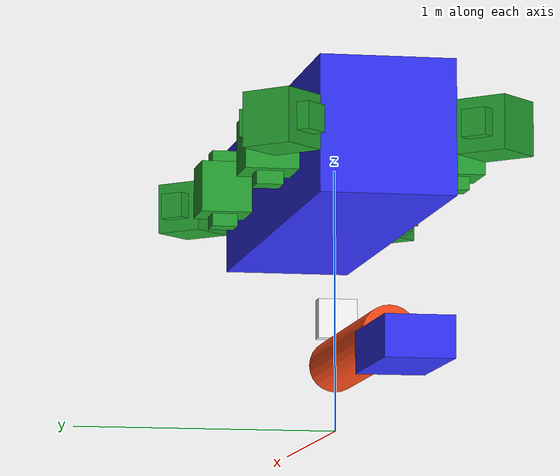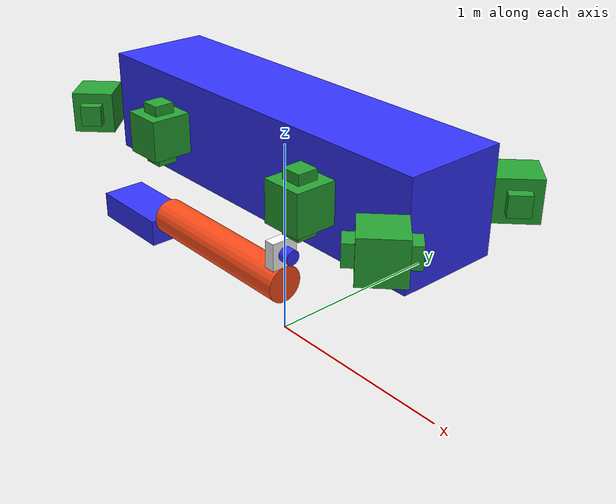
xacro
<?xml version="1.0"?>
<robot xmlns:xacro="http://www.ros.org/wiki/xacro"  name="robot">

    <!-- This is an example of a URDF. -->
    <!-- As we move through the file, new things to note will be pointed out. -->
    <!-- It's not meant an example of GOOD design, but an example of some of the various features of URDF/xacro. -->

    <!-- This will include all the contents of example_include.xacro first. Go check it out! -->
    <xacro:include filename="RoboSubInclude.xacro" />

    <!-- This first link called "world" is empty -->
    <link name="world"></link>

    <!-- A simple fixed joint from our empty world link, to our base. -->
    <!-- The base origin is offset from the world origin. -->
    <xacro:property name="sub_base" value="sub_link" />
    <joint name="sub_joint" type="fixed">
        <origin xyz="0 0 0" rpy="0 0 0"/>
        <parent link="world"/>
        <child link="${sub_base}"/>
    </joint>

    <!-- base_link is a large rectangular plate. Some things to note: -->
    <!-- - We set the visual origin Z to half the box height, so that the link origin sits at the bottom of the box -->
    <!-- - We set the collision to be identical to the visual -->
    <!-- - We specified the colour manually (but still need to enter a name) -->
    <!-- - We specified all the inertial parameters manually -->
    <!-- dimensions in m and kg -->
    <xacro:property name="sub_xorg" value="0" />
    <xacro:property name="sub_yorg" value="0" />
    <xacro:property name="sub_zorg" value="1" />

    <xacro:property name="sub_rorg" value="0" />
    <xacro:property name="sub_porg" value="0" />
    <xacro:property name="sub_yaworg" value="0" />

    <xacro:property name="subx" value="2" />
    <xacro:property name="suby" value="0.5" />
    <xacro:property name="subz" value="0.5" />
    <xacro:property name="submass" value="12" />
    <!-- ${subx} ${suby} ${subz} | mass="${submass}" x="${subx}" y="${suby}" z="${subz}" -->
    <!-- the sub base is just a rectangular prism that represents the main body of the sub-->
    <link name="${sub_base}">
        <visual>
            <origin xyz="${sub_xorg} ${sub_yorg} ${sub_zorg}" rpy="${sub_rorg} ${sub_porg} ${sub_yaworg}"/>
            <geometry>
                <box size="${subx} ${suby} ${subz}" />
            </geometry>
            <material name="blue" />
        </visual>
        <collision>
            <origin xyz="${sub_xorg} ${sub_yorg} ${sub_zorg}" rpy="${sub_rorg} ${sub_porg} ${sub_yaworg}"/>
            <geometry>
                <box size="${subx} ${suby} ${subz}" />
            </geometry>
        </collision>
         <xacro:inertial_box mass="${submass}" x="${subx}" y="${suby}" z="${subz}">
            <origin xyz="${sub_xorg} ${sub_yorg} ${sub_zorg}" rpy="${sub_rorg} ${sub_porg} ${sub_yaworg}"/>
        </xacro:inertial_box>
    </link>

    <!-- the next 8 joints/ links are going to represent the motors on the sub, they will be very similar-->
    <!-- need degrees to rad conversion-->
    <xacro:property name="d2r" value="${3.14159 / 180}" />
    <!-- naming convention:-->
    <!-- flm_xorg is front left motor x origin | xyz are x y and z | rpy are roll pitch and yaw-->

    <!-- front left motor -->
    <xacro:property name="flm_xsize" value="0.2" />
    <xacro:property name="flm_ysize" value="0.2" />
    <xacro:property name="flm_zsize" value="0.2" />

    <xacro:property name="flm_xorg" value="${subx / 2}" />
    <xacro:property name="flm_yorg" value="${(suby / 2 + 0.14)}" />
    <xacro:property name="flm_zorg" value="0" />

    <xacro:property name="flm_rorg" value="0" />
    <xacro:property name="flm_porg" value="0" />
    <xacro:property name="flm_yaworg" value="${-(45 * d2r)}" />

    <xacro:property name="flm_mass" value="1" />

    <joint name="front_left_motor_joint" type="fixed">
        <origin xyz="${sub_xorg} ${sub_yorg} ${sub_zorg}" rpy="${sub_rorg} ${sub_porg} ${sub_yaworg}"/>
        <parent link="${sub_base}"/>
        <child link="front_left_motor_link"/>
    </joint>

    <link name="front_left_motor_link">
        <visual>
            <origin xyz="${flm_xorg} ${flm_yorg} ${flm_zorg}" rpy="${flm_rorg} ${flm_porg} ${flm_yaworg}"/>
            <geometry>
                <box size="${flm_xsize} ${flm_ysize} ${flm_zsize}" />
            </geometry>
            <material name="green" />
        </visual>
        <visual>
            <origin xyz="${flm_xorg} ${flm_yorg} ${flm_zorg}" rpy="${flm_rorg} ${flm_porg} ${flm_yaworg}"/>
            <geometry>
                <box size="0.3 0.1 0.1" />
            </geometry>
            <material name="green" />
        </visual>
        <collision>
            <origin xyz="${flm_xorg} ${flm_yorg} ${flm_zorg}" rpy="${flm_rorg} ${flm_porg} ${flm_yaworg}"/>
            <geometry>
                <box size="${flm_xsize} ${flm_ysize} ${flm_zsize}" />
            </geometry>
        </collision>
         <xacro:inertial_box mass="${flm_mass}" x="${flm_xsize}" y="${flm_ysize}" z="${flm_zsize}">
            <origin xyz="${flm_xorg} ${flm_yorg} ${flm_zorg}" rpy="${flm_rorg} ${flm_porg} ${flm_yaworg}"/>
        </xacro:inertial_box>
    </link>

    <!-- front right motor -->
    <xacro:property name="frm_xsize" value="0.2" />
    <xacro:property name="frm_ysize" value="0.2" />
    <xacro:property name="frm_zsize" value="0.2" />

    <xacro:property name="frm_xorg" value="${subx / 2}" />
    <xacro:property name="frm_yorg" value="${-(suby / 2 + 0.14)}" />
    <xacro:property name="frm_zorg" value="0" />

    <xacro:property name="frm_rorg" value="0" />
    <xacro:property name="frm_porg" value="0" />
    <xacro:property name="frm_yaworg" value="${(45 * d2r)}" />

    <xacro:property name="frm_mass" value="1" />

    <joint name="front_right_motor_joint" type="fixed">
        <origin xyz="${sub_xorg} ${sub_yorg} ${sub_zorg}" rpy="${sub_rorg} ${sub_porg} ${sub_yaworg}"/>
        <parent link="${sub_base}"/>
        <child link="front_right_motor_link"/>
    </joint>

    <link name="front_right_motor_link">
        <visual>
            <origin xyz="${frm_xorg} ${frm_yorg} ${frm_zorg}" rpy="${frm_rorg} ${frm_porg} ${frm_yaworg}"/>
            <geometry>
                <box size="${frm_xsize} ${frm_ysize} ${frm_zsize}" />
            </geometry>
            <material name="green" />
        </visual>
        <visual>
            <origin xyz="${frm_xorg} ${frm_yorg} ${frm_zorg}" rpy="${frm_rorg} ${frm_porg} ${frm_yaworg}"/>
            <geometry>
                <box size="0.3 0.1 0.1" />
            </geometry>
            <material name="green" />
        </visual>
        <collision>
            <origin xyz="${frm_xorg} ${frm_yorg} ${frm_zorg}" rpy="${frm_rorg} ${frm_porg} ${frm_yaworg}"/>
            <geometry>
                <box size="${frm_xsize} ${frm_ysize} ${frm_zsize}" />
            </geometry>
        </collision>
         <xacro:inertial_box mass="${frm_mass}" x="${frm_xsize}" y="${frm_ysize}" z="${frm_zsize}">
            <origin xyz="${frm_xorg} ${frm_yorg} ${frm_zorg}" rpy="${frm_rorg} ${frm_porg} ${frm_yaworg}"/>
        </xacro:inertial_box>
    </link>

    <!-- back right motor -->
    <xacro:property name="brm_xsize" value="0.2" />
    <xacro:property name="brm_ysize" value="0.2" />
    <xacro:property name="brm_zsize" value="0.2" />

    <xacro:property name="brm_xorg" value="${-(subx / 2)}" />
    <xacro:property name="brm_yorg" value="${-(suby / 2 + 0.14)}" />
    <xacro:property name="brm_zorg" value="0" />

    <xacro:property name="brm_rorg" value="0" />
    <xacro:property name="brm_porg" value="0" />
    <xacro:property name="brm_yaworg" value="${-(45 * d2r)}" />

    <xacro:property name="brm_mass" value="1" />

    <joint name="back_right_motor_joint" type="fixed">
        <origin xyz="${sub_xorg} ${sub_yorg} ${sub_zorg}" rpy="${sub_rorg} ${sub_porg} ${sub_yaworg}"/>
        <parent link="${sub_base}"/>
        <child link="back_right_motor_link"/>
    </joint>

    <link name="back_right_motor_link">
        <visual>
            <origin xyz="${brm_xorg} ${brm_yorg} ${brm_zorg}" rpy="${brm_rorg} ${brm_porg} ${brm_yaworg}"/>
            <geometry>
                <box size="${brm_xsize} ${brm_ysize} ${brm_zsize}" />
            </geometry>
            <material name="green" />
        </visual>
        <visual>
            <origin xyz="${brm_xorg} ${brm_yorg} ${brm_zorg}" rpy="${brm_rorg} ${brm_porg} ${brm_yaworg}"/>
            <geometry>
                <box size="0.3 0.1 0.1" />
            </geometry>
            <material name="green" />
        </visual>
        <collision>
            <origin xyz="${brm_xorg} ${brm_yorg} ${brm_zorg}" rpy="${brm_rorg} ${brm_porg} ${brm_yaworg}"/>
            <geometry>
                <box size="${brm_xsize} ${brm_ysize} ${brm_zsize}" />
            </geometry>
        </collision>
         <xacro:inertial_box mass="${brm_mass}" x="${brm_xsize}" y="${brm_ysize}" z="${brm_zsize}">
            <origin xyz="${brm_xorg} ${brm_yorg} ${brm_zorg}" rpy="${brm_rorg} ${brm_porg} ${brm_yaworg}"/>
        </xacro:inertial_box>
    </link>

    <!-- back left motor -->
    <xacro:property name="blm_xsize" value="0.2" />
    <xacro:property name="blm_ysize" value="0.2" />
    <xacro:property name="blm_zsize" value="0.2" />

    <xacro:property name="blm_xorg" value="${-(subx / 2)}" />
    <xacro:property name="blm_yorg" value="${(suby / 2 + 0.14)}" />
    <xacro:property name="blm_zorg" value="0" />

    <xacro:property name="blm_rorg" value="0" />
    <xacro:property name="blm_porg" value="0" />
    <xacro:property name="blm_yaworg" value="${(45 * d2r)}" />

    <xacro:property name="blm_mass" value="1" />

    <joint name="back_left_motor_joint" type="fixed">
        <origin xyz="${sub_xorg} ${sub_yorg} ${sub_zorg}" rpy="${sub_rorg} ${sub_porg} ${sub_yaworg}"/>
        <parent link="${sub_base}"/>
        <child link="back_left_motor_link"/>
    </joint>

    <link name="back_left_motor_link">
        <visual>
            <origin xyz="${blm_xorg} ${blm_yorg} ${blm_zorg}" rpy="${blm_rorg} ${blm_porg} ${blm_yaworg}"/>
            <geometry>
                <box size="${blm_xsize} ${blm_ysize} ${blm_zsize}" />
            </geometry>
            <material name="green" />
        </visual>
        <visual>
            <origin xyz="${blm_xorg} ${blm_yorg} ${blm_zorg}" rpy="${blm_rorg} ${blm_porg} ${blm_yaworg}"/>
            <geometry>
                <box size="0.3 0.1 0.1" />
            </geometry>
            <material name="green" />
        </visual>
        <collision>
            <origin xyz="${blm_xorg} ${blm_yorg} ${blm_zorg}" rpy="${blm_rorg} ${blm_porg} ${blm_yaworg}"/>
            <geometry>
                <box size="${blm_xsize} ${blm_ysize} ${blm_zsize}" />
            </geometry>
        </collision>
         <xacro:inertial_box mass="${blm_mass}" x="${blm_xsize}" y="${blm_ysize}" z="${blm_zsize}">
            <origin xyz="${blm_xorg} ${blm_yorg} ${blm_zorg}" rpy="${blm_rorg} ${blm_porg} ${blm_yaworg}"/>
        </xacro:inertial_box>
    </link>

    <!-- top front left motor -->
    <xacro:property name="tflm_xsize" value="0.2" />
    <xacro:property name="tflm_ysize" value="0.2" />
    <xacro:property name="tflm_zsize" value="0.2" />

    <xacro:property name="tflm_xorg" value="${subx / 4}" />
    <xacro:property name="tflm_yorg" value="${(suby / 2 + 0.1)}" />
    <xacro:property name="tflm_zorg" value="0" />

    <xacro:property name="tflm_rorg" value="0" />
    <xacro:property name="tflm_porg" value="${-90 * d2r}" />
    <xacro:property name="tflm_yaworg" value="0" />

    <xacro:property name="tflm_mass" value="1" />

    <joint name="top_front_left_motor_joint" type="fixed">
        <origin xyz="${sub_xorg} ${sub_yorg} ${sub_zorg}" rpy="${sub_rorg} ${sub_porg} ${sub_yaworg}"/>
        <parent link="${sub_base}"/>
        <child link="top_front_left_motor_link"/>
    </joint>

    <link name="top_front_left_motor_link">
        <visual>
            <origin xyz="${tflm_xorg} ${tflm_yorg} ${tflm_zorg}" rpy="${tflm_rorg} ${tflm_porg} ${tflm_yaworg}"/>
            <geometry>
                <box size="${tflm_xsize} ${tflm_ysize} ${tflm_zsize}" />
            </geometry>
            <material name="green" />
        </visual>
        <visual>
            <origin xyz="${tflm_xorg} ${tflm_yorg} ${tflm_zorg}" rpy="${tflm_rorg} ${tflm_porg} ${tflm_yaworg}"/>            <geometry>
                <box size="0.3 0.1 0.1" />
            </geometry>
            <material name="green" />
        </visual>
        <collision>
            <origin xyz="${tflm_xorg} ${tflm_yorg} ${tflm_zorg}" rpy="${tflm_rorg} ${tflm_porg} ${tflm_yaworg}"/>
            <geometry>
                <box size="${tflm_xsize} ${tflm_ysize} ${tflm_zsize}" />
            </geometry>
        </collision>
         <xacro:inertial_box mass="${tflm_mass}" x="${tflm_xsize}" y="${tflm_ysize}" z="${tflm_zsize}">
            <origin xyz="${tflm_xorg} ${tflm_yorg} ${tflm_zorg}" rpy="${tflm_rorg} ${tflm_porg} ${tflm_yaworg}"/>
        </xacro:inertial_box>
    </link>

    <!-- top front right motor -->
    <xacro:property name="tfrm_xsize" value="0.2" />
    <xacro:property name="tfrm_ysize" value="0.2" />
    <xacro:property name="tfrm_zsize" value="0.2" />

    <xacro:property name="tfrm_xorg" value="${subx / 4}" />
    <xacro:property name="tfrm_yorg" value="${-(suby / 2 + 0.1)}" />
    <xacro:property name="tfrm_zorg" value="0" />

    <xacro:property name="tfrm_rorg" value="0" />
    <xacro:property name="tfrm_porg" value="${(-90* d2r)}" />
    <xacro:property name="tfrm_yaworg" value="0" />

    <xacro:property name="tfrm_mass" value="1" />

    <joint name="top_front_right_motor_joint" type="fixed">
        <origin xyz="${sub_xorg} ${sub_yorg} ${sub_zorg}" rpy="${sub_rorg} ${sub_porg} ${sub_yaworg}"/>
        <parent link="${sub_base}"/>
        <child link="top_front_right_motor_link"/>
    </joint>

    <link name="top_front_right_motor_link">
        <visual>
            <origin xyz="${tfrm_xorg} ${tfrm_yorg} ${tfrm_zorg}" rpy="${tfrm_rorg} ${tfrm_porg} ${tfrm_yaworg}"/>
            <geometry>
                <box size="${tfrm_xsize} ${tfrm_ysize} ${tfrm_zsize}" />
            </geometry>
            <material name="green" />
        </visual>
        <visual>
            <origin xyz="${tfrm_xorg} ${tfrm_yorg} ${tfrm_zorg}" rpy="${tfrm_rorg} ${tfrm_porg} ${tfrm_yaworg}"/>
            <geometry>
                <box size="0.3 0.1 0.1" />
            </geometry>
            <material name="green" />
        </visual>
        <collision>
            <origin xyz="${tfrm_xorg} ${tfrm_yorg} ${tfrm_zorg}" rpy="${tfrm_rorg} ${tfrm_porg} ${tfrm_yaworg}"/>
            <geometry>
                <box size="${tfrm_xsize} ${tfrm_ysize} ${tfrm_zsize}" />
            </geometry>
        </collision>
         <xacro:inertial_box mass="${tfrm_mass}" x="${tfrm_xsize}" y="${tfrm_ysize}" z="${tfrm_zsize}">
            <origin xyz="${tfrm_xorg} ${tfrm_yorg} ${tfrm_zorg}" rpy="${tfrm_rorg} ${tfrm_porg} ${tfrm_yaworg}"/>
        </xacro:inertial_box>
    </link>

    <!-- top back right motor -->
    <xacro:property name="tbrm_xsize" value="0.2" />
    <xacro:property name="tbrm_ysize" value="0.2" />
    <xacro:property name="tbrm_zsize" value="0.2" />

    <xacro:property name="tbrm_xorg" value="${-(subx / 4)}" />
    <xacro:property name="tbrm_yorg" value="${-(suby / 2 + 0.1)}" />
    <xacro:property name="tbrm_zorg" value="0" />

    <xacro:property name="tbrm_rorg" value="0" />
    <xacro:property name="tbrm_porg" value="${(-90 * d2r)}" />
    <xacro:property name="tbrm_yaworg" value="0" />

    <xacro:property name="tbrm_mass" value="1" />

    <joint name="top_back_right_motor_joint" type="fixed">
        <origin xyz="${sub_xorg} ${sub_yorg} ${sub_zorg}" rpy="${sub_rorg} ${sub_porg} ${sub_yaworg}"/>
        <parent link="${sub_base}"/>
        <child link="top_back_right_motor_link"/>
    </joint>

    <link name="top_back_right_motor_link">
        <visual>
            <origin xyz="${tbrm_xorg} ${tbrm_yorg} ${tbrm_zorg}" rpy="${tbrm_rorg} ${tbrm_porg} ${tbrm_yaworg}"/>
            <geometry>
                <box size="${tbrm_xsize} ${tbrm_ysize} ${tbrm_zsize}" />
            </geometry>
            <material name="green" />
        </visual>
        <visual>
            <origin xyz="${tbrm_xorg} ${tbrm_yorg} ${tbrm_zorg}" rpy="${tbrm_rorg} ${tbrm_porg} ${tbrm_yaworg}"/>
            <geometry>
                <box size="0.3 0.1 0.1" />
            </geometry>
            <material name="green" />
        </visual>
        <collision>
            <origin xyz="${tbrm_xorg} ${tbrm_yorg} ${tbrm_zorg}" rpy="${tbrm_rorg} ${tbrm_porg} ${tbrm_yaworg}"/>
            <geometry>
                <box size="${tbrm_xsize} ${tbrm_ysize} ${tbrm_zsize}" />
            </geometry>
        </collision>
         <xacro:inertial_box mass="${tbrm_mass}" x="${tbrm_xsize}" y="${tbrm_ysize}" z="${tbrm_zsize}">
            <origin xyz="${tbrm_xorg} ${tbrm_yorg} ${tbrm_zorg}" rpy="${tbrm_rorg} ${tbrm_porg} ${tbrm_yaworg}"/>
        </xacro:inertial_box>
    </link>

    <!-- top back left motor -->
    <xacro:property name="tblm_xsize" value="0.2" />
    <xacro:property name="tblm_ysize" value="0.2" />
    <xacro:property name="tblm_zsize" value="0.2" />

    <xacro:property name="tblm_xorg" value="${-(subx / 4)}" />
    <xacro:property name="tblm_yorg" value="${(suby / 2 + 0.1)}" />
    <xacro:property name="tblm_zorg" value="0" />

    <xacro:property name="tblm_rorg" value="0" />
    <xacro:property name="tblm_porg" value="${(-90 * d2r)}" />
    <xacro:property name="tblm_yaworg" value="0" />

    <xacro:property name="tblm_mass" value="1" />

    <joint name="top_back_left_motor_joint" type="fixed">
        <origin xyz="${sub_xorg} ${sub_yorg} ${sub_zorg}" rpy="${sub_rorg} ${sub_porg} ${sub_yaworg}"/>
        <parent link="${sub_base}"/>
        <child link="top_back_left_motor_link"/>
    </joint>

    <link name="top_back_left_motor_link">
        <visual>
            <origin xyz="${tblm_xorg} ${tblm_yorg} ${tblm_zorg}" rpy="${tblm_rorg} ${tblm_porg} ${tblm_yaworg}"/>
            <geometry>
                <box size="${tblm_xsize} ${tblm_ysize} ${tblm_zsize}" />
            </geometry>
            <material name="green" />
        </visual>
        <visual>
            <origin xyz="${tblm_xorg} ${tblm_yorg} ${tblm_zorg}" rpy="${tblm_rorg} ${tblm_porg} ${tblm_yaworg}"/>
            <geometry>
                <box size="0.3 0.1 0.1" />
            </geometry>
            <material name="green" />
        </visual>
        <collision>
            <origin xyz="${tblm_xorg} ${tblm_yorg} ${tblm_zorg}" rpy="${tblm_rorg} ${tblm_porg} ${tblm_yaworg}"/>
            <geometry>
                <box size="${tblm_xsize} ${tblm_ysize} ${tblm_zsize}" />
            </geometry>
        </collision>
         <xacro:inertial_box mass="${tblm_mass}" x="${tblm_xsize}" y="${tblm_ysize}" z="${tblm_zsize}">
            <origin xyz="${tblm_xorg} ${tblm_yorg} ${tblm_zorg}" rpy="${tblm_rorg} ${tblm_porg} ${tblm_yaworg}"/>
        </xacro:inertial_box>
    </link>

    <!-- slider_joint lets slider_link move back and forth along the top of the base in one dimension.  -->
    <!-- - Origin is set to one of the top edges of the base_link box, so that our link skims across the top  -->
    <!-- - It moves along the X axis -->
    <!-- - We need to specify limits for the motion -->
    <joint name="slider_joint" type="prismatic">
        <origin xyz="-1.25 0 0.1" rpy="0 0 0"/>
        <parent link="${sub_base}"/>
        <child link="slider_link"/>
        <axis xyz="1 0 0"/>
        <limit lower="0" upper="2" velocity="100" effort="100"/>
        <dynamics damping="10.0" friction="10.0"/>
    </joint>

    <!-- slider_link is the box skimming across the top of the base. Its parameters are similar to the base_link, however: -->
    <!-- - Instead of explicitly describing a colour, it uses the named material "blue". It knows about "blue" that material was included in example_include.xacro. -->
    <!-- - Instead of explicitly describing the inertia, we use a macro that was defined in the example_include.xacro -->

    <link name="slider_link">
        <visual>
            <origin xyz="0 0 0.075" rpy="0 0 0"/>
            <geometry>
                <box size="0.5 0.25 0.15" />
            </geometry>
            <material name="blue" />
        </visual>
        <collision>
            <origin xyz="0 0 0.075" rpy="0 0 0"/>
            <geometry>
                <box size="0.5 0.25 0.15" />
            </geometry>
        </collision>
        <xacro:inertial_box mass="0.5" x="0.5" y="0.25" z="0.15">
            <origin xyz="0 0 0.075" rpy="0 0 0"/>
        </xacro:inertial_box>
    </link>

    <!-- arm_joint describes the rotation of the arm and is centred around the top corner of the slider box. -->
    <!-- - The axis of rotation is -1 in Y, so that positive is "up" -->
    <!-- - The upper limit uses xacro's mathematical features -->
    <joint name="arm_joint" type="revolute">
        <origin xyz="0.25 0 0.15" rpy="0 0 0"/>
        <parent link="slider_link"/>
        <child link="arm_link"/>
        <axis xyz="0 -1 0"/>
        <limit lower="0" upper="${pi/2}" velocity="100" effort="100"/>
        <dynamics damping="10.0" friction="10.0"/>
    </joint>

    <!-- arm_link describes the arm -->
    <!-- - We use the "property" feature to define the arm length and radius and use them multiple times -->
    <!-- - The visual/collision origin is set to halfway along the length (similar to the box), but also with a rotation (again using the mathematical features). -->
    <!--   This is because the cylinder extends along the Z axis by default, but we want it to be along the X axis (when the joint is at 0) -->

    <xacro:property name="arm_length" value="1" />
    <xacro:property name="arm_radius" value="0.1" />
    <link name="arm_link">
        <visual>
            <origin xyz="${arm_length/2} 0 0" rpy="0 ${pi/2} 0"/>
            <geometry>
                <cylinder length="${arm_length}" radius="${arm_radius}" />
            </geometry>
            <material name="orange" />
        </visual>
        <collision>
            <origin xyz="${arm_length/2} 0 0" rpy="0 ${pi/2} 0"/>
            <geometry>
                <cylinder length="${arm_length}" radius="${arm_radius}" />
            </geometry>
        </collision>
        <xacro:inertial_cylinder mass="1.0" length="${arm_length}" radius="${arm_radius}">
            <origin xyz="${arm_length/2} 0 0" rpy="0 ${pi/2} 0"/>
        </xacro:inertial_cylinder>
    </link>

    <!-- camera_joint describes where the camera is relative to the arm -->
    <!-- - Even though the camera isn't moving relative to the arm, it will probably be helpful to have its own link/frame rather than just adding more visuals to the arm -->
    <!-- - For this example, the camera_link origin will be at the centre of the camera's "sensor" -->
    <joint name="camera_joint" type="fixed">
        <origin xyz="${arm_length} 0 ${arm_radius + 0.075}" rpy="0 0 0"/>
        <parent link="arm_link"/>
        <child link="camera_link"/>
    </joint>

    <!-- camera_link describes the camera at the end of the arm -->
    <!-- - It has multiple visual elements, which ultimately get combined together -->
    <!-- - Even if we specify different materials, RViz will just colour them all the same as the first -->
    <!-- - Although we could also specify multiple collision geometries, instead we just use a single box that encompasses the whole camera -->
    <link name="camera_link">
        <visual>
            <origin xyz="-0.03 0 0" rpy="0 0 0"/>
            <geometry>
                <box size="0.06 0.15 0.15" />
            </geometry>
            <material name="white" />
        </visual>
        <visual>
            <origin xyz="0.03 0 0" rpy="0 ${pi/2} 0"/>
            <geometry>
                <cylinder length="0.06" radius="0.04" />
            </geometry>
            <material name="blue" />
        </visual>
        <collision>
            <origin xyz="0.0 0 0" rpy="0 0 0"/>
            <geometry>
                <box size="0.12 0.15 0.15" />
            </geometry>
        </collision>
        <xacro:inertial_box mass="0.1" x="0.12" y="0.15" z="0.15">
            <origin xyz="0.0 0 0" rpy="0 0 0"/>
        </xacro:inertial_box>
    </link>

    <xacro:include filename="example_gazebo.xacro" />
    <!-- not sure why this line is needed yet, it seems like it is not necessary for rviz, I imagine that it will be important for gazebo-->
    <!-- it is important for gazebo-->

</robot>

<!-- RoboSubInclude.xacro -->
<robot xmlns:xacro="http://www.ros.org/wiki/xacro" >

    <!-- This file is not a robot in and of itself, it just contains some useful tags that could be included in any robot -->
    <!-- This file was made by Articulated Robotics on Youtube -->

    <!-- Specify some colours -->

    <material name="white">
        <color rgba="1 1 1 1"/>
    </material>

    <material name="orange">
        <color rgba="1 0.3 0.1 1"/>
    </material>

    <material name="blue">
        <color rgba="0.2 0.2 1 1"/>
    </material>

    <!-- Specify some standard inertial calculations https://en.wikipedia.org/wiki/List_of_moments_of_inertia -->
    <!-- These make use of xacro's mathematical functionality -->

    <xacro:macro name="inertial_sphere" params="mass radius *origin">
        <inertial>
            <xacro:insert_block name="origin"/>
            <mass value="${mass}" />
            <inertia ixx="${(2/5) * mass * (radius*radius)}" ixy="0.0" ixz="0.0"
                    iyy="${(2/5) * mass * (radius*radius)}" iyz="0.0"
                    izz="${(2/5) * mass * (radius*radius)}" />
        </inertial>
    </xacro:macro>

    <xacro:macro name="inertial_box" params="mass x y z *origin">
        <inertial>
            <xacro:insert_block name="origin"/>
            <mass value="${mass}" />
            <inertia ixx="${(1/12) * mass * (y*y+z*z)}" ixy="0.0" ixz="0.0"
                    iyy="${(1/12) * mass * (x*x+z*z)}" iyz="0.0"
                    izz="${(1/12) * mass * (x*x+y*y)}" />
        </inertial>
    </xacro:macro>

    <xacro:macro name="inertial_cylinder" params="mass length radius *origin">
        <inertial>
            <xacro:insert_block name="origin"/>
            <mass value="${mass}" />
            <inertia ixx="${(1/12) * mass * (3*radius*radius + length*length)}" ixy="0.0" ixz="0.0"
                    iyy="${(1/12) * mass * (3*radius*radius + length*length)}" iyz="0.0"
                    izz="${(1/2) * mass * (radius*radius)}" />
        </inertial>
    </xacro:macro>

</robot>

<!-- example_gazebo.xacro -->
<robot xmlns:xacro="http://www.ros.org/wiki/xacro">

    <!-- To include it add the following line -->

    <!-- Instead, we need to add gazebo tags for our links that refer to Gazebo materials -->

    <gazebo reference="sub_link">
        <material>Gazebo/Blue</material>
    </gazebo>

    <!-- motors -->
    <gazebo reference="front_left_motor_link">
        <material>Gazebo/Green</material>
    </gazebo>

    <gazebo reference="front_right_motor_link">
        <material>Gazebo/Green</material>
    </gazebo>

    <gazebo reference="back_right_motor_link">
        <material>Gazebo/Green</material>
    </gazebo>

    <gazebo reference="back_left_motor_link">
        <material>Gazebo/Green</material>
    </gazebo>

    <gazebo reference="top_front_left_motor_link">
        <material>Gazebo/Green</material>
    </gazebo>

    <gazebo reference="top_front_right_motor_link">
        <material>Gazebo/Green</material>
    </gazebo>

    <gazebo reference="top_back_right_motor_link">
        <material>Gazebo/Green</material>
    </gazebo>

    <gazebo reference="top_back_left_motor_link">
        <material>Gazebo/Green</material>
    </gazebo>
    <!-- end motors -->

    <gazebo reference="slider_link">
        <material>Gazebo/Blue</material>
    </gazebo>

    <gazebo reference="arm_link">
        <material>Gazebo/Orange</material>
    </gazebo>

    <!-- Gazebo requires the use of plugins to interact with other systems such as ROS. -->

    <!-- This plugin will publish the joint_states for the selected joints
            (which robot_state_publisher can then use to broadcast the approprate tf). -->

    <gazebo>
        <plugin name="gazebo_ros_joint_state_publisher"
            filename="libgazebo_ros_joint_state_publisher.so">
            <update_rate>20</update_rate>
            <joint_name>slider_joint</joint_name>
            <joint_name>arm_joint</joint_name>
        </plugin>
    </gazebo>

    <!-- This plugin will read a JointTrajectory message from the /set_joint_trajectory topic
            and move the machine accordingly. It's a bit clunky but it works. -->
    <gazebo>
        <plugin name="gazebo_ros_joint_pose_trajectory"
            filename="libgazebo_ros_joint_pose_trajectory.so">
            <update_rate>20</update_rate>
        </plugin>
    </gazebo>

    <!-- The next section shows an example of adding a sensor, in this case a depth camera. -->

    <!-- First, create the link and joint for the optical frame -->

    <joint name="camera_optical_joint" type="fixed">
        <origin xyz="0 0 0" rpy="-1.571 0 -1.571" />
        <parent link="camera_link" />
        <child link="camera_link_optical" />
    </joint>

    <link name="camera_link_optical"></link>

    <!-- Add a gazebo tag for the ORIGINAL camera_link (but in the plugin we reference the optical frame so that ROS can orient things correctly) -->
    <!-- Note that although visualise is set to true, it won't actually visualise the depth camera in gazebo. To see the preview,
            try swapping "depth" to "camera"-->
    <gazebo reference="camera_link">
        <sensor type="depth" name="my_camera">
            <update_rate>20</update_rate>
            <visualize>true</visualize>
            <camera name="cam">
                <horizontal_fov>1.3962634</horizontal_fov>
                <image>
                    <width>640</width>
                    <height>480</height>
                    <format>R8B8G8</format>
                </image>
                <clip>
                    <near>0.02</near>
                    <far>300</far>
                </clip>
                <noise>
                    <type>gaussian</type>
                    <mean>0.0</mean>
                    <stddev>0.007</stddev>
                </noise>
            </camera>
            <plugin name="camera_controller" filename="libgazebo_ros_camera.so">
                <frame_name>camera_link_optical</frame_name>
                <min_depth>0.1</min_depth>
                <max_depth>500</max_depth>
            </plugin>
        </sensor>
    </gazebo>

</robot>
